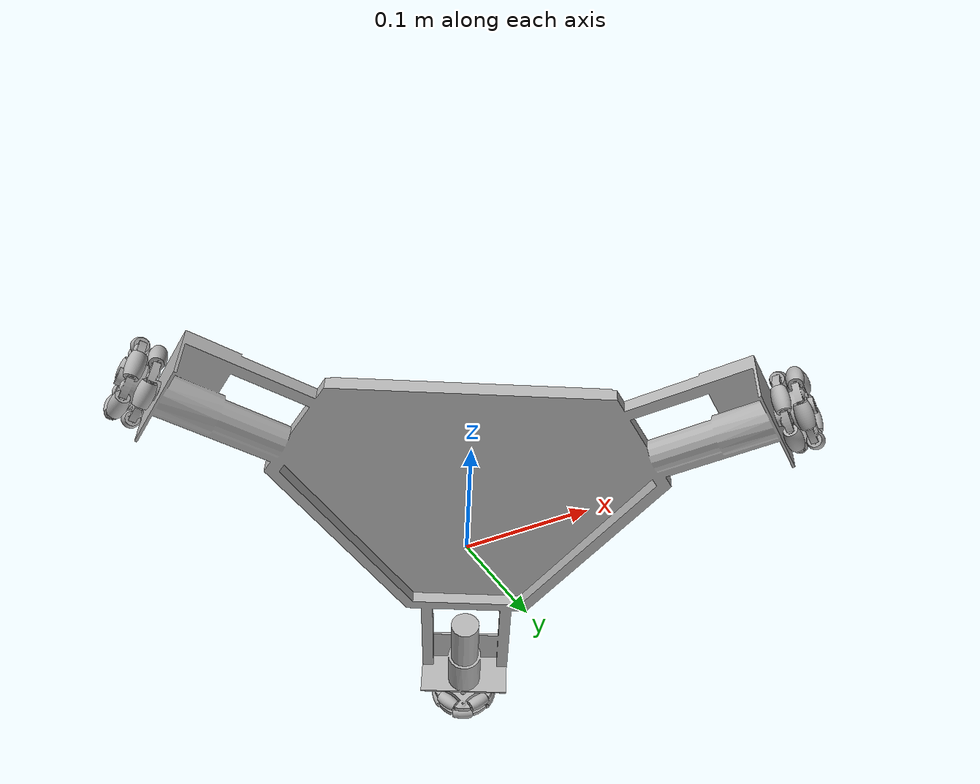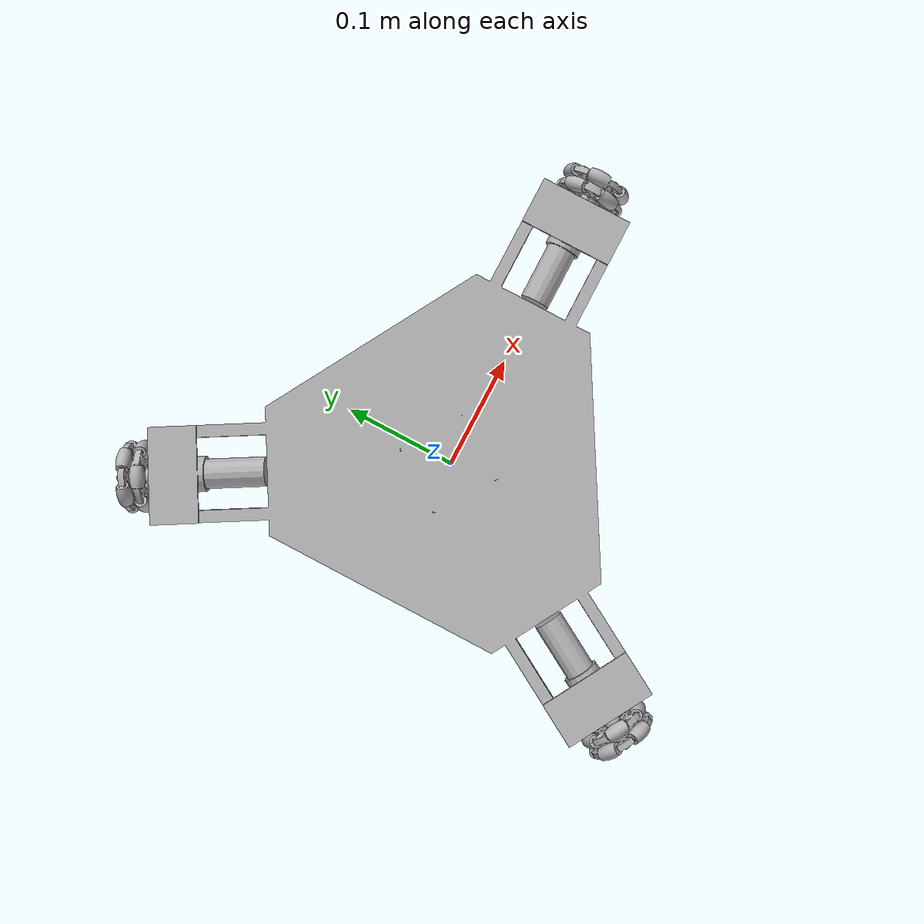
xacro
<?xml version="1.0" ?>
<robot name="Only" xmlns:xacro="http://www.ros.org/wiki/xacro">

<xacro:include filename="$(find Only_description)/urdf/materials.xacro" />
<xacro:include filename="$(find Only_description)/urdf/Only.trans" />
<xacro:include filename="$(find Only_description)/urdf/Only.gazebo" />
<link name="base_link">
  <inertial>
    <origin rpy="0 0 0" xyz="-0.0005481678472587425 0.0004672883105433634 0.04858375980546063"/>
    <mass value="4.617813684697092"/>
    <inertia ixx="0.053549" ixy="1.8e-05" ixz="-2e-06" iyy="0.053613" iyz="-1e-06" izz="0.105761"/>
  </inertial>
  <visual>
    <origin rpy="0 0 0" xyz="0 0 0"/>
    <geometry>
      <mesh filename="package://Only_description/meshes/base_link.stl" scale="0.001 0.001 0.001"/>
    </geometry>
    <material name="silver"/>
  </visual>
  <collision>
    <origin rpy="0 0 0" xyz="0 0 0"/>
    <geometry>
      <mesh filename="package://Only_description/meshes/base_link.stl" scale="0.001 0.001 0.001"/>
    </geometry>
  </collision>
</link>

<link name="RubberWheel__19__1">
  <inertial>
    <origin rpy="0 0 0" xyz="6.72192752987355e-08 4.335093944929369e-07 5.4518222020183416e-09"/>
    <mass value="0.0149327963758917"/>
    <inertia ixx="0.0" ixy="0.0" ixz="0.0" iyy="0.0" iyz="-0.0" izz="0.0"/>
  </inertial>
  <visual>
    <origin rpy="0 0 0" xyz="0.122187 0.238539 -0.050602"/>
    <geometry>
      <mesh filename="package://Only_description/meshes/RubberWheel__19__1.stl" scale="0.001 0.001 0.001"/>
    </geometry>
    <material name="silver"/>
  </visual>
  <collision>
    <origin rpy="0 0 0" xyz="0.122187 0.238539 -0.050602"/>
    <geometry>
      <mesh filename="package://Only_description/meshes/RubberWheel__19__1.stl" scale="0.001 0.001 0.001"/>
    </geometry>
  </collision>
</link>

<link name="RubberWheel__20__1">
  <inertial>
    <origin rpy="0 0 0" xyz="1.0402291833466748e-07 2.990247199852192e-08 5.392345077404048e-09"/>
    <mass value="0.0149327963758917"/>
    <inertia ixx="0.0" ixy="0.0" ixz="-0.0" iyy="0.0" iyz="0.0" izz="0.0"/>
  </inertial>
  <visual>
    <origin rpy="0 0 0" xyz="0.146681 0.224397 -0.050602"/>
    <geometry>
      <mesh filename="package://Only_description/meshes/RubberWheel__20__1.stl" scale="0.001 0.001 0.001"/>
    </geometry>
    <material name="silver"/>
  </visual>
  <collision>
    <origin rpy="0 0 0" xyz="0.146681 0.224397 -0.050602"/>
    <geometry>
      <mesh filename="package://Only_description/meshes/RubberWheel__20__1.stl" scale="0.001 0.001 0.001"/>
    </geometry>
  </collision>
</link>

<link name="RubberWheel__18__1">
  <inertial>
    <origin rpy="0 0 0" xyz="5.316830542501094e-08 2.3458956110999907e-08 9.078439291293483e-08"/>
    <mass value="0.0149327963758917"/>
    <inertia ixx="0.0" ixy="0.0" ixz="0.0" iyy="0.0" iyz="-0.0" izz="0.0"/>
  </inertial>
  <visual>
    <origin rpy="0 0 0" xyz="0.15425 0.220027 -0.023703"/>
    <geometry>
      <mesh filename="package://Only_description/meshes/RubberWheel__18__1.stl" scale="0.001 0.001 0.001"/>
    </geometry>
    <material name="silver"/>
  </visual>
  <collision>
    <origin rpy="0 0 0" xyz="0.15425 0.220027 -0.023703"/>
    <geometry>
      <mesh filename="package://Only_description/meshes/RubberWheel__18__1.stl" scale="0.001 0.001 0.001"/>
    </geometry>
  </collision>
</link>

<link name="RubberWheel__16__1">
  <inertial>
    <origin rpy="0 0 0" xyz="8.567393922076505e-08 2.3161439655083882e-07 -3.526443179838537e-07"/>
    <mass value="0.0149327963758917"/>
    <inertia ixx="0.0" ixy="0.0" ixz="-0.0" iyy="0.0" iyz="0.0" izz="1e-06"/>
  </inertial>
  <visual>
    <origin rpy="0 0 0" xyz="0.134434 0.231468 -0.007079"/>
    <geometry>
      <mesh filename="package://Only_description/meshes/RubberWheel__16__1.stl" scale="0.001 0.001 0.001"/>
    </geometry>
    <material name="silver"/>
  </visual>
  <collision>
    <origin rpy="0 0 0" xyz="0.134434 0.231468 -0.007079"/>
    <geometry>
      <mesh filename="package://Only_description/meshes/RubberWheel__16__1.stl" scale="0.001 0.001 0.001"/>
    </geometry>
  </collision>
</link>

<link name="RubberWheel__17__1">
  <inertial>
    <origin rpy="0 0 0" xyz="1.18139199145606e-07 4.3983977202066704e-07 9.088062883147452e-08"/>
    <mass value="0.0149327963758917"/>
    <inertia ixx="0.0" ixy="0.0" ixz="-0.0" iyy="0.0" iyz="0.0" izz="0.0"/>
  </inertial>
  <visual>
    <origin rpy="0 0 0" xyz="0.114618 0.242909 -0.023703"/>
    <geometry>
      <mesh filename="package://Only_description/meshes/RubberWheel__17__1.stl" scale="0.001 0.001 0.001"/>
    </geometry>
    <material name="silver"/>
  </visual>
  <collision>
    <origin rpy="0 0 0" xyz="0.114618 0.242909 -0.023703"/>
    <geometry>
      <mesh filename="package://Only_description/meshes/RubberWheel__17__1.stl" scale="0.001 0.001 0.001"/>
    </geometry>
  </collision>
</link>

<link name="RubberWheel__13__1">
  <inertial>
    <origin rpy="0 0 0" xyz="8.566264469989093e-08 -4.63466217875963e-07 -1.1142432294886095e-07"/>
    <mass value="0.0149327963758917"/>
    <inertia ixx="0.0" ixy="0.0" ixz="-0.0" iyy="0.0" iyz="0.0" izz="1e-06"/>
  </inertial>
  <visual>
    <origin rpy="0 0 0" xyz="0.128434 0.221075 -0.055197"/>
    <geometry>
      <mesh filename="package://Only_description/meshes/RubberWheel__13__1.stl" scale="0.001 0.001 0.001"/>
    </geometry>
    <material name="silver"/>
  </visual>
  <collision>
    <origin rpy="0 0 0" xyz="0.128434 0.221075 -0.055197"/>
    <geometry>
      <mesh filename="package://Only_description/meshes/RubberWheel__13__1.stl" scale="0.001 0.001 0.001"/>
    </geometry>
  </collision>
</link>

<link name="RubberWheel__14__1">
  <inertial>
    <origin rpy="0 0 0" xyz="5.319749671328644e-08 3.283083451488533e-07 4.4505105208092477e-07"/>
    <mass value="0.0149327963758917"/>
    <inertia ixx="0.0" ixy="0.0" ixz="-0.0" iyy="0.0" iyz="0.0" izz="0.0"/>
  </inertial>
  <visual>
    <origin rpy="0 0 0" xyz="0.14825 0.209635 -0.038572"/>
    <geometry>
      <mesh filename="package://Only_description/meshes/RubberWheel__14__1.stl" scale="0.001 0.001 0.001"/>
    </geometry>
    <material name="silver"/>
  </visual>
  <collision>
    <origin rpy="0 0 0" xyz="0.14825 0.209635 -0.038572"/>
    <geometry>
      <mesh filename="package://Only_description/meshes/RubberWheel__14__1.stl" scale="0.001 0.001 0.001"/>
    </geometry>
  </collision>
</link>

<link name="RubberWheel__15__1">
  <inertial>
    <origin rpy="0 0 0" xyz="1.0411717221714412e-07 3.346388662561761e-07 -4.695203371270218e-07"/>
    <mass value="0.0149327963758917"/>
    <inertia ixx="0.0" ixy="0.0" ixz="0.0" iyy="0.0" iyz="-0.0" izz="0.0"/>
  </inertial>
  <visual>
    <origin rpy="0 0 0" xyz="0.140681 0.214005 -0.011674"/>
    <geometry>
      <mesh filename="package://Only_description/meshes/RubberWheel__15__1.stl" scale="0.001 0.001 0.001"/>
    </geometry>
    <material name="silver"/>
  </visual>
  <collision>
    <origin rpy="0 0 0" xyz="0.140681 0.214005 -0.011674"/>
    <geometry>
      <mesh filename="package://Only_description/meshes/RubberWheel__15__1.stl" scale="0.001 0.001 0.001"/>
    </geometry>
  </collision>
</link>

<link name="RubberWheel__11__1">
  <inertial>
    <origin rpy="0 0 0" xyz="6.731346743893418e-08 -2.617541769722731e-07 -4.694611078857186e-07"/>
    <mass value="0.0149327963758917"/>
    <inertia ixx="0.0" ixy="0.0" ixz="-0.0" iyy="0.0" iyz="0.0" izz="0.0"/>
  </inertial>
  <visual>
    <origin rpy="0 0 0" xyz="0.116187 0.228146 -0.011674"/>
    <geometry>
      <mesh filename="package://Only_description/meshes/RubberWheel__11__1.stl" scale="0.001 0.001 0.001"/>
    </geometry>
    <material name="silver"/>
  </visual>
  <collision>
    <origin rpy="0 0 0" xyz="0.116187 0.228146 -0.011674"/>
    <geometry>
      <mesh filename="package://Only_description/meshes/RubberWheel__11__1.stl" scale="0.001 0.001 0.001"/>
    </geometry>
  </collision>
</link>

<link name="RubberWheel__12__1">
  <inertial>
    <origin rpy="0 0 0" xyz="1.1816833075939392e-07 -2.553108047198549e-07 4.451466442401131e-07"/>
    <mass value="0.0149327963758917"/>
    <inertia ixx="0.0" ixy="0.0" ixz="0.0" iyy="0.0" iyz="-0.0" izz="0.0"/>
  </inertial>
  <visual>
    <origin rpy="0 0 0" xyz="0.108618 0.232516 -0.038572"/>
    <geometry>
      <mesh filename="package://Only_description/meshes/RubberWheel__12__1.stl" scale="0.001 0.001 0.001"/>
    </geometry>
    <material name="silver"/>
  </visual>
  <collision>
    <origin rpy="0 0 0" xyz="0.108618 0.232516 -0.038572"/>
    <geometry>
      <mesh filename="package://Only_description/meshes/RubberWheel__12__1.stl" scale="0.001 0.001 0.001"/>
    </geometry>
  </collision>
</link>

<link name="RubberWheel__22__1">
  <inertial>
    <origin rpy="0 0 0" xyz="4.281013699647396e-07 -2.2297172462548698e-07 4.465371166925691e-07"/>
    <mass value="0.0149327963758917"/>
    <inertia ixx="1e-06" ixy="0.0" ixz="0.0" iyy="0.0" iyz="-0.0" izz="0.0"/>
  </inertial>
  <visual>
    <origin rpy="0 0 0" xyz="-0.267222 0.022395 -0.038572"/>
    <geometry>
      <mesh filename="package://Only_description/meshes/RubberWheel__22__1.stl" scale="0.001 0.001 0.001"/>
    </geometry>
    <material name="silver"/>
  </visual>
  <collision>
    <origin rpy="0 0 0" xyz="-0.267222 0.022395 -0.038572"/>
    <geometry>
      <mesh filename="package://Only_description/meshes/RubberWheel__22__1.stl" scale="0.001 0.001 0.001"/>
    </geometry>
  </collision>
</link>

<link name="RubberWheel__21__1">
  <inertial>
    <origin rpy="0 0 0" xyz="4.2797832838781247e-07 3.6058249097995973e-07 -1.101440781012264e-07"/>
    <mass value="0.0149327963758917"/>
    <inertia ixx="1e-06" ixy="0.0" ixz="-0.0" iyy="0.0" iyz="0.0" izz="1e-06"/>
  </inertial>
  <visual>
    <origin rpy="0 0 0" xyz="-0.267222 -0.000486 -0.055197"/>
    <geometry>
      <mesh filename="package://Only_description/meshes/RubberWheel__21__1.stl" scale="0.001 0.001 0.001"/>
    </geometry>
    <material name="silver"/>
  </visual>
  <collision>
    <origin rpy="0 0 0" xyz="-0.267222 -0.000486 -0.055197"/>
    <geometry>
      <mesh filename="package://Only_description/meshes/RubberWheel__21__1.stl" scale="0.001 0.001 0.001"/>
    </geometry>
  </collision>
</link>

<link name="RubberWheel__26__1">
  <inertial>
    <origin rpy="0 0 0" xyz="4.2798784988251626e-07 -5.609290593469596e-08 4.46221066763286e-07"/>
    <mass value="0.0149327963758917"/>
    <inertia ixx="1e-06" ixy="-0.0" ixz="0.0" iyy="0.0" iyz="0.0" izz="0.0"/>
  </inertial>
  <visual>
    <origin rpy="0 0 0" xyz="-0.267222 -0.023368 -0.038572"/>
    <geometry>
      <mesh filename="package://Only_description/meshes/RubberWheel__26__1.stl" scale="0.001 0.001 0.001"/>
    </geometry>
    <material name="silver"/>
  </visual>
  <collision>
    <origin rpy="0 0 0" xyz="-0.267222 -0.023368 -0.038572"/>
    <geometry>
      <mesh filename="package://Only_description/meshes/RubberWheel__26__1.stl" scale="0.001 0.001 0.001"/>
    </geometry>
  </collision>
</link>

<link name="RubberWheel__24__1">
  <inertial>
    <origin rpy="0 0 0" xyz="4.281167795827656e-07 -4.343611260601565e-08 -4.6830814213853766e-07"/>
    <mass value="0.0149327963758917"/>
    <inertia ixx="1e-06" ixy="0.0" ixz="0.0" iyy="0.0" iyz="-0.0" izz="0.0"/>
  </inertial>
  <visual>
    <origin rpy="0 0 0" xyz="-0.267222 -0.014628 -0.011674"/>
    <geometry>
      <mesh filename="package://Only_description/meshes/RubberWheel__24__1.stl" scale="0.001 0.001 0.001"/>
    </geometry>
    <material name="silver"/>
  </visual>
  <collision>
    <origin rpy="0 0 0" xyz="-0.267222 -0.014628 -0.011674"/>
    <geometry>
      <mesh filename="package://Only_description/meshes/RubberWheel__24__1.stl" scale="0.001 0.001 0.001"/>
    </geometry>
  </collision>
</link>

<link name="RubberWheel__23__1">
  <inertial>
    <origin rpy="0 0 0" xyz="4.281869388500503e-07 -2.3600005509723243e-07 -4.681128127504569e-07"/>
    <mass value="0.0149327963758917"/>
    <inertia ixx="1e-06" ixy="-0.0" ixz="0.0" iyy="0.0" iyz="0.0" izz="0.0"/>
  </inertial>
  <visual>
    <origin rpy="0 0 0" xyz="-0.267222 0.013655 -0.011674"/>
    <geometry>
      <mesh filename="package://Only_description/meshes/RubberWheel__23__1.stl" scale="0.001 0.001 0.001"/>
    </geometry>
    <material name="silver"/>
  </visual>
  <collision>
    <origin rpy="0 0 0" xyz="-0.267222 0.013655 -0.011674"/>
    <geometry>
      <mesh filename="package://Only_description/meshes/RubberWheel__23__1.stl" scale="0.001 0.001 0.001"/>
    </geometry>
  </collision>
</link>

<link name="RubberWheel__29__1">
  <inertial>
    <origin rpy="0 0 0" xyz="4.279615868352238e-07 -4.319686793680111e-08 6.542121906705223e-09"/>
    <mass value="0.0149327963758917"/>
    <inertia ixx="1e-06" ixy="-0.0" ixz="0.0" iyy="0.0" iyz="0.0" izz="0.0"/>
  </inertial>
  <visual>
    <origin rpy="0 0 0" xyz="-0.255222 -0.014628 -0.050602"/>
    <geometry>
      <mesh filename="package://Only_description/meshes/RubberWheel__29__1.stl" scale="0.001 0.001 0.001"/>
    </geometry>
    <material name="silver"/>
  </visual>
  <collision>
    <origin rpy="0 0 0" xyz="-0.255222 -0.014628 -0.050602"/>
    <geometry>
      <mesh filename="package://Only_description/meshes/RubberWheel__29__1.stl" scale="0.001 0.001 0.001"/>
    </geometry>
  </collision>
</link>

<link name="RubberWheel__27__1">
  <inertial>
    <origin rpy="0 0 0" xyz="4.2803174366001784e-07 -2.357607423661423e-07 6.737698461656283e-09"/>
    <mass value="0.0149327963758917"/>
    <inertia ixx="1e-06" ixy="0.0" ixz="0.0" iyy="0.0" iyz="-0.0" izz="0.0"/>
  </inertial>
  <visual>
    <origin rpy="0 0 0" xyz="-0.255222 0.013655 -0.050602"/>
    <geometry>
      <mesh filename="package://Only_description/meshes/RubberWheel__27__1.stl" scale="0.001 0.001 0.001"/>
    </geometry>
    <material name="silver"/>
  </visual>
  <collision>
    <origin rpy="0 0 0" xyz="-0.255222 0.013655 -0.050602"/>
    <geometry>
      <mesh filename="package://Only_description/meshes/RubberWheel__27__1.stl" scale="0.001 0.001 0.001"/>
    </geometry>
  </collision>
</link>

<link name="RubberWheel__30__1">
  <inertial>
    <origin rpy="0 0 0" xyz="4.281606724165776e-07 -2.2310423913873834e-07 9.220868557591189e-08"/>
    <mass value="0.0149327963758917"/>
    <inertia ixx="1e-06" ixy="-0.0" ixz="0.0" iyy="0.0" iyz="0.0" izz="0.0"/>
  </inertial>
  <visual>
    <origin rpy="0 0 0" xyz="-0.255222 0.022395 -0.023703"/>
    <geometry>
      <mesh filename="package://Only_description/meshes/RubberWheel__30__1.stl" scale="0.001 0.001 0.001"/>
    </geometry>
    <material name="silver"/>
  </visual>
  <collision>
    <origin rpy="0 0 0" xyz="-0.255222 0.022395 -0.023703"/>
    <geometry>
      <mesh filename="package://Only_description/meshes/RubberWheel__30__1.stl" scale="0.001 0.001 0.001"/>
    </geometry>
  </collision>
</link>

<link name="RubberWheel__28__1">
  <inertial>
    <origin rpy="0 0 0" xyz="4.281701982411512e-07 3.602204256494433e-07 -3.514264894912897e-07"/>
    <mass value="0.0149327963758917"/>
    <inertia ixx="1e-06" ixy="0.0" ixz="-0.0" iyy="0.0" iyz="0.0" izz="1e-06"/>
  </inertial>
  <visual>
    <origin rpy="0 0 0" xyz="-0.255222 -0.000486 -0.007079"/>
    <geometry>
      <mesh filename="package://Only_description/meshes/RubberWheel__28__1.stl" scale="0.001 0.001 0.001"/>
    </geometry>
    <material name="silver"/>
  </visual>
  <collision>
    <origin rpy="0 0 0" xyz="-0.255222 -0.000486 -0.007079"/>
    <geometry>
      <mesh filename="package://Only_description/meshes/RubberWheel__28__1.stl" scale="0.001 0.001 0.001"/>
    </geometry>
  </collision>
</link>

<link name="RubberWheel__25__1">
  <inertial>
    <origin rpy="0 0 0" xyz="4.2804715605360144e-07 -5.622548624600876e-08 9.189199332709785e-08"/>
    <mass value="0.0149327963758917"/>
    <inertia ixx="1e-06" ixy="0.0" ixz="0.0" iyy="0.0" iyz="-0.0" izz="0.0"/>
  </inertial>
  <visual>
    <origin rpy="0 0 0" xyz="-0.255222 -0.023368 -0.023703"/>
    <geometry>
      <mesh filename="package://Only_description/meshes/RubberWheel__25__1.stl" scale="0.001 0.001 0.001"/>
    </geometry>
    <material name="silver"/>
  </visual>
  <collision>
    <origin rpy="0 0 0" xyz="-0.255222 -0.023368 -0.023703"/>
    <geometry>
      <mesh filename="package://Only_description/meshes/RubberWheel__25__1.stl" scale="0.001 0.001 0.001"/>
    </geometry>
  </collision>
</link>

<link name="RubberWheel__8__1">
  <inertial>
    <origin rpy="0 0 0" xyz="3.4820911906652263e-07 -8.373710350118024e-08 4.459941034540282e-09"/>
    <mass value="0.0149327963758917"/>
    <inertia ixx="0.0" ixy="-0.0" ixz="-0.0" iyy="0.0" iyz="-0.0" izz="0.0"/>
  </inertial>
  <visual>
    <origin rpy="0 0 0" xyz="0.146926 -0.225113 -0.050602"/>
    <geometry>
      <mesh filename="package://Only_description/meshes/RubberWheel__8__1.stl" scale="0.001 0.001 0.001"/>
    </geometry>
    <material name="silver"/>
  </visual>
  <collision>
    <origin rpy="0 0 0" xyz="0.146926 -0.225113 -0.050602"/>
    <geometry>
      <mesh filename="package://Only_description/meshes/RubberWheel__8__1.stl" scale="0.001 0.001 0.001"/>
    </geometry>
  </collision>
</link>

<link name="RubberWheel__6__1">
  <inertial>
    <origin rpy="0 0 0" xyz="2.9732849624042323e-07 -7.736165283378504e-08 8.987036776569868e-08"/>
    <mass value="0.0149327963758917"/>
    <inertia ixx="0.0" ixy="-0.0" ixz="0.0" iyy="0.0" iyz="0.0" izz="0.0"/>
  </inertial>
  <visual>
    <origin rpy="0 0 0" xyz="0.154495 -0.220743 -0.023703"/>
    <geometry>
      <mesh filename="package://Only_description/meshes/RubberWheel__6__1.stl" scale="0.001 0.001 0.001"/>
    </geometry>
    <material name="silver"/>
  </visual>
  <collision>
    <origin rpy="0 0 0" xyz="0.154495 -0.220743 -0.023703"/>
    <geometry>
      <mesh filename="package://Only_description/meshes/RubberWheel__6__1.stl" scale="0.001 0.001 0.001"/>
    </geometry>
  </collision>
</link>

<link name="RubberWheel__7__1">
  <inertial>
    <origin rpy="0 0 0" xyz="3.2993193790908926e-07 -2.857564357916509e-07 -3.5360645637191185e-07"/>
    <mass value="0.0149327963758917"/>
    <inertia ixx="0.0" ixy="-0.0" ixz="0.0" iyy="0.0" iyz="-0.0" izz="1e-06"/>
  </inertial>
  <visual>
    <origin rpy="0 0 0" xyz="0.134679 -0.232184 -0.007079"/>
    <geometry>
      <mesh filename="package://Only_description/meshes/RubberWheel__7__1.stl" scale="0.001 0.001 0.001"/>
    </geometry>
    <material name="silver"/>
  </visual>
  <collision>
    <origin rpy="0 0 0" xyz="0.134679 -0.232184 -0.007079"/>
    <geometry>
      <mesh filename="package://Only_description/meshes/RubberWheel__7__1.stl" scale="0.001 0.001 0.001"/>
    </geometry>
  </collision>
</link>

<link name="RubberWheel__10__1">
  <inertial>
    <origin rpy="0 0 0" xyz="3.6248367517310864e-07 -4.940616574466983e-07 8.987037990182412e-08"/>
    <mass value="0.0149327963758917"/>
    <inertia ixx="0.0" ixy="-0.0" ixz="-0.0" iyy="0.0" iyz="-0.0" izz="0.0"/>
  </inertial>
  <visual>
    <origin rpy="0 0 0" xyz="0.114863 -0.243625 -0.023703"/>
    <geometry>
      <mesh filename="package://Only_description/meshes/RubberWheel__10__1.stl" scale="0.001 0.001 0.001"/>
    </geometry>
    <material name="silver"/>
  </visual>
  <collision>
    <origin rpy="0 0 0" xyz="0.114863 -0.243625 -0.023703"/>
    <geometry>
      <mesh filename="package://Only_description/meshes/RubberWheel__10__1.stl" scale="0.001 0.001 0.001"/>
    </geometry>
  </collision>
</link>

<link name="RubberWheel__9__1">
  <inertial>
    <origin rpy="0 0 0" xyz="3.1151936946693937e-07 -4.875412946969693e-07 4.459947848534096e-09"/>
    <mass value="0.0149327963758917"/>
    <inertia ixx="0.0" ixy="-0.0" ixz="0.0" iyy="0.0" iyz="0.0" izz="0.0"/>
  </inertial>
  <visual>
    <origin rpy="0 0 0" xyz="0.122432 -0.239255 -0.050602"/>
    <geometry>
      <mesh filename="package://Only_description/meshes/RubberWheel__9__1.stl" scale="0.001 0.001 0.001"/>
    </geometry>
    <material name="silver"/>
  </visual>
  <collision>
    <origin rpy="0 0 0" xyz="0.122432 -0.239255 -0.050602"/>
    <geometry>
      <mesh filename="package://Only_description/meshes/RubberWheel__9__1.stl" scale="0.001 0.001 0.001"/>
    </geometry>
  </collision>
</link>

<link name="RubberWheel__3__1">
  <inertial>
    <origin rpy="0 0 0" xyz="3.2982053738139783e-07 4.095066757359156e-07 -1.1233456338743952e-07"/>
    <mass value="0.0149327963758917"/>
    <inertia ixx="0.0" ixy="-0.0" ixz="0.0" iyy="0.0" iyz="-0.0" izz="1e-06"/>
  </inertial>
  <visual>
    <origin rpy="0 0 0" xyz="0.128679 -0.221791 -0.055197"/>
    <geometry>
      <mesh filename="package://Only_description/meshes/RubberWheel__3__1.stl" scale="0.001 0.001 0.001"/>
    </geometry>
    <material name="silver"/>
  </visual>
  <collision>
    <origin rpy="0 0 0" xyz="0.128679 -0.221791 -0.055197"/>
    <geometry>
      <mesh filename="package://Only_description/meshes/RubberWheel__3__1.stl" scale="0.001 0.001 0.001"/>
    </geometry>
  </collision>
</link>

<link name="RubberWheel__2__1">
  <inertial>
    <origin rpy="0 0 0" xyz="3.624238684579728e-07 2.0111182469362276e-07 4.441889351544659e-07"/>
    <mass value="0.0149327963758917"/>
    <inertia ixx="0.0" ixy="-0.0" ixz="0.0" iyy="0.0" iyz="0.0" izz="0.0"/>
  </inertial>
  <visual>
    <origin rpy="0 0 0" xyz="0.108863 -0.233232 -0.038572"/>
    <geometry>
      <mesh filename="package://Only_description/meshes/RubberWheel__2__1.stl" scale="0.001 0.001 0.001"/>
    </geometry>
    <material name="silver"/>
  </visual>
  <collision>
    <origin rpy="0 0 0" xyz="0.108863 -0.233232 -0.038572"/>
    <geometry>
      <mesh filename="package://Only_description/meshes/RubberWheel__2__1.stl" scale="0.001 0.001 0.001"/>
    </geometry>
  </collision>
</link>

<link name="RubberWheel__4__1">
  <inertial>
    <origin rpy="0 0 0" xyz="3.1154349454387553e-07 2.0748741869081044e-07 -4.704008353239447e-07"/>
    <mass value="0.0149327963758917"/>
    <inertia ixx="0.0" ixy="-0.0" ixz="-0.0" iyy="0.0" iyz="-0.0" izz="0.0"/>
  </inertial>
  <visual>
    <origin rpy="0 0 0" xyz="0.116432 -0.228862 -0.011674"/>
    <geometry>
      <mesh filename="package://Only_description/meshes/RubberWheel__4__1.stl" scale="0.001 0.001 0.001"/>
    </geometry>
    <material name="silver"/>
  </visual>
  <collision>
    <origin rpy="0 0 0" xyz="0.116432 -0.228862 -0.011674"/>
    <geometry>
      <mesh filename="package://Only_description/meshes/RubberWheel__4__1.stl" scale="0.001 0.001 0.001"/>
    </geometry>
  </collision>
</link>

<link name="RubberWheel__5__1">
  <inertial>
    <origin rpy="0 0 0" xyz="3.4823330657962615e-07 -3.887083538378633e-07 -4.704010895476701e-07"/>
    <mass value="0.0149327963758917"/>
    <inertia ixx="0.0" ixy="-0.0" ixz="0.0" iyy="0.0" iyz="0.0" izz="0.0"/>
  </inertial>
  <visual>
    <origin rpy="0 0 0" xyz="0.140926 -0.214721 -0.011674"/>
    <geometry>
      <mesh filename="package://Only_description/meshes/RubberWheel__5__1.stl" scale="0.001 0.001 0.001"/>
    </geometry>
    <material name="silver"/>
  </visual>
  <collision>
    <origin rpy="0 0 0" xyz="0.140926 -0.214721 -0.011674"/>
    <geometry>
      <mesh filename="package://Only_description/meshes/RubberWheel__5__1.stl" scale="0.001 0.001 0.001"/>
    </geometry>
  </collision>
</link>

<link name="RubberWheel__1__1">
  <inertial>
    <origin rpy="0 0 0" xyz="2.972687514479766e-07 -3.821881348065048e-07 4.4418828081677075e-07"/>
    <mass value="0.0149327963758917"/>
    <inertia ixx="0.0" ixy="-0.0" ixz="-0.0" iyy="0.0" iyz="-0.0" izz="0.0"/>
  </inertial>
  <visual>
    <origin rpy="0 0 0" xyz="0.148495 -0.210351 -0.038572"/>
    <geometry>
      <mesh filename="package://Only_description/meshes/RubberWheel__1__1.stl" scale="0.001 0.001 0.001"/>
    </geometry>
    <material name="silver"/>
  </visual>
  <collision>
    <origin rpy="0 0 0" xyz="0.148495 -0.210351 -0.038572"/>
    <geometry>
      <mesh filename="package://Only_description/meshes/RubberWheel__1__1.stl" scale="0.001 0.001 0.001"/>
    </geometry>
  </collision>
</link>

<link name="WheelBase__3__1">
  <inertial>
    <origin rpy="0 0 0" xyz="0.00256897250893548 0.004456385205079627 3.309601156398917e-06"/>
    <mass value="0.14657737338783688"/>
    <inertia ixx="2.9e-05" ixy="6e-06" ixz="-0.0" iyy="3.7e-05" iyz="-0.0" izz="2.6e-05"/>
  </inertial>
  <visual>
    <origin rpy="0 0 0" xyz="0.133884 0.230515 -0.031138"/>
    <geometry>
      <mesh filename="package://Only_description/meshes/WheelBase__3__1.stl" scale="0.001 0.001 0.001"/>
    </geometry>
    <material name="silver"/>
  </visual>
  <collision>
    <origin rpy="0 0 0" xyz="0.133884 0.230515 -0.031138"/>
    <geometry>
      <mesh filename="package://Only_description/meshes/WheelBase__3__1.stl" scale="0.001 0.001 0.001"/>
    </geometry>
  </collision>
</link>

<link name="WheelBase__5__1">
  <inertial>
    <origin rpy="0 0 0" xyz="-0.009043479736456861 3.901943215357004e-06 -3.7724220747561987e-06"/>
    <mass value="0.14657737338734944"/>
    <inertia ixx="4e-05" ixy="0.0" ixz="-0.0" iyy="2.6e-05" iyz="0.0" izz="2.6e-05"/>
  </inertial>
  <visual>
    <origin rpy="0 0 0" xyz="-0.270022 -0.000486 -0.031138"/>
    <geometry>
      <mesh filename="package://Only_description/meshes/WheelBase__5__1.stl" scale="0.001 0.001 0.001"/>
    </geometry>
    <material name="silver"/>
  </visual>
  <collision>
    <origin rpy="0 0 0" xyz="-0.270022 -0.000486 -0.031138"/>
    <geometry>
      <mesh filename="package://Only_description/meshes/WheelBase__5__1.stl" scale="0.001 0.001 0.001"/>
    </geometry>
  </collision>
</link>

<link name="WheelBase__1__1">
  <inertial>
    <origin rpy="0 0 0" xyz="0.00452535084651165 -0.00783089771441381 3.3086660311335003e-06"/>
    <mass value="0.14657737338765658"/>
    <inertia ixx="2.9e-05" ixy="-6e-06" ixz="-0.0" iyy="3.7e-05" iyz="0.0" izz="2.6e-05"/>
  </inertial>
  <visual>
    <origin rpy="0 0 0" xyz="0.136079 -0.234609 -0.031138"/>
    <geometry>
      <mesh filename="package://Only_description/meshes/WheelBase__1__1.stl" scale="0.001 0.001 0.001"/>
    </geometry>
    <material name="silver"/>
  </visual>
  <collision>
    <origin rpy="0 0 0" xyz="0.136079 -0.234609 -0.031138"/>
    <geometry>
      <mesh filename="package://Only_description/meshes/WheelBase__1__1.stl" scale="0.001 0.001 0.001"/>
    </geometry>
  </collision>
</link>

<joint name="Rev4" type="continuous">
  <origin rpy="0 0 0" xyz="0.011697 -0.008024 0.019464"/>
  <parent link="WheelBase__3__1"/>
  <child link="RubberWheel__19__1"/>
  <axis xyz="0.700629 -0.404509 -0.587785"/>
</joint>

<joint name="Rev5" type="continuous">
  <origin rpy="0 0 0" xyz="-0.012797 0.006118 0.019464"/>
  <parent link="WheelBase__3__1"/>
  <child link="RubberWheel__20__1"/>
  <axis xyz="0.700629 -0.404508 0.587785"/>
</joint>

<joint name="Rev6" type="continuous">
  <origin rpy="0 0 0" xyz="-0.020366 0.010488 -0.007435"/>
  <parent link="WheelBase__3__1"/>
  <child link="RubberWheel__18__1"/>
  <axis xyz="-0.267617 0.154509 0.951057"/>
</joint>

<joint name="Rev7" type="continuous">
  <origin rpy="0 0 0" xyz="-0.00055 -0.000953 -0.024059"/>
  <parent link="WheelBase__3__1"/>
  <child link="RubberWheel__16__1"/>
  <axis xyz="-0.866025 0.5 -0.0"/>
</joint>

<joint name="Rev8" type="continuous">
  <origin rpy="0 0 0" xyz="0.019266 -0.012394 -0.007435"/>
  <parent link="WheelBase__3__1"/>
  <child link="RubberWheel__17__1"/>
  <axis xyz="-0.267617 0.154508 -0.951057"/>
</joint>

<joint name="Rev9" type="continuous">
  <origin rpy="0 0 0" xyz="0.00545 0.00944 0.024059"/>
  <parent link="WheelBase__3__1"/>
  <child link="RubberWheel__13__1"/>
  <axis xyz="0.866025 -0.5 0.0"/>
</joint>

<joint name="Rev10" type="continuous">
  <origin rpy="0 0 0" xyz="-0.014366 0.02088 0.007434"/>
  <parent link="WheelBase__3__1"/>
  <child link="RubberWheel__14__1"/>
  <axis xyz="0.267617 -0.154508 0.951057"/>
</joint>

<joint name="Rev11" type="continuous">
  <origin rpy="0 0 0" xyz="-0.006797 0.01651 -0.019464"/>
  <parent link="WheelBase__3__1"/>
  <child link="RubberWheel__15__1"/>
  <axis xyz="-0.700629 0.404509 0.587785"/>
</joint>

<joint name="Rev12" type="continuous">
  <origin rpy="0 0 0" xyz="0.017697 0.002369 -0.019464"/>
  <parent link="WheelBase__3__1"/>
  <child link="RubberWheel__11__1"/>
  <axis xyz="-0.700629 0.404508 -0.587785"/>
</joint>

<joint name="Rev13" type="continuous">
  <origin rpy="0 0 0" xyz="0.025266 -0.002001 0.007434"/>
  <parent link="WheelBase__3__1"/>
  <child link="RubberWheel__12__1"/>
  <axis xyz="0.267617 -0.154509 -0.951057"/>
</joint>

<joint name="Rev14" type="continuous">
  <origin rpy="0 0 0" xyz="-0.0028 -0.022881 0.007434"/>
  <parent link="WheelBase__5__1"/>
  <child link="RubberWheel__22__1"/>
  <axis xyz="-0.0 0.309017 0.951057"/>
</joint>

<joint name="Rev15" type="continuous">
  <origin rpy="0 0 0" xyz="-0.0028 0.0 0.024059"/>
  <parent link="WheelBase__5__1"/>
  <child link="RubberWheel__21__1"/>
  <axis xyz="-0.0 1.0 -0.0"/>
</joint>

<joint name="Rev16" type="continuous">
  <origin rpy="0 0 0" xyz="-0.0028 0.022882 0.007434"/>
  <parent link="WheelBase__5__1"/>
  <child link="RubberWheel__26__1"/>
  <axis xyz="0.0 0.309017 -0.951057"/>
</joint>

<joint name="Rev17" type="continuous">
  <origin rpy="0 0 0" xyz="-0.0028 0.014142 -0.019464"/>
  <parent link="WheelBase__5__1"/>
  <child link="RubberWheel__24__1"/>
  <axis xyz="0.0 -0.809017 -0.587785"/>
</joint>

<joint name="Rev18" type="continuous">
  <origin rpy="0 0 0" xyz="-0.0028 -0.014141 -0.019464"/>
  <parent link="WheelBase__5__1"/>
  <child link="RubberWheel__23__1"/>
  <axis xyz="-0.0 -0.809017 0.587785"/>
</joint>

<joint name="Rev19" type="continuous">
  <origin rpy="0 0 0" xyz="-0.0148 0.014142 0.019464"/>
  <parent link="WheelBase__5__1"/>
  <child link="RubberWheel__29__1"/>
  <axis xyz="0.0 0.809017 -0.587785"/>
</joint>

<joint name="Rev20" type="continuous">
  <origin rpy="0 0 0" xyz="-0.0148 -0.014141 0.019464"/>
  <parent link="WheelBase__5__1"/>
  <child link="RubberWheel__27__1"/>
  <axis xyz="-0.0 0.809017 0.587785"/>
</joint>

<joint name="Rev21" type="continuous">
  <origin rpy="0 0 0" xyz="-0.0148 -0.022881 -0.007435"/>
  <parent link="WheelBase__5__1"/>
  <child link="RubberWheel__30__1"/>
  <axis xyz="-0.0 -0.309017 0.951057"/>
</joint>

<joint name="Rev22" type="continuous">
  <origin rpy="0 0 0" xyz="-0.0148 0.0 -0.024059"/>
  <parent link="WheelBase__5__1"/>
  <child link="RubberWheel__28__1"/>
  <axis xyz="0.0 -1.0 0.0"/>
</joint>

<joint name="Rev23" type="continuous">
  <origin rpy="0 0 0" xyz="-0.0148 0.022882 -0.007435"/>
  <parent link="WheelBase__5__1"/>
  <child link="RubberWheel__25__1"/>
  <axis xyz="0.0 -0.309017 -0.951057"/>
</joint>

<joint name="Rev24" type="continuous">
  <origin rpy="0 0 0" xyz="-0.010847 -0.009496 0.019464"/>
  <parent link="WheelBase__1__1"/>
  <child link="RubberWheel__8__1"/>
  <axis xyz="-0.700629 -0.404508 -0.587785"/>
</joint>

<joint name="Rev25" type="continuous">
  <origin rpy="0 0 0" xyz="-0.018416 -0.013866 -0.007435"/>
  <parent link="WheelBase__1__1"/>
  <child link="RubberWheel__6__1"/>
  <axis xyz="0.267617 0.154508 -0.951057"/>
</joint>

<joint name="Rev26" type="continuous">
  <origin rpy="0 0 0" xyz="0.0014 -0.002425 -0.024059"/>
  <parent link="WheelBase__1__1"/>
  <child link="RubberWheel__7__1"/>
  <axis xyz="0.866025 0.5 0.0"/>
</joint>

<joint name="Rev27" type="continuous">
  <origin rpy="0 0 0" xyz="0.021216 0.009016 -0.007435"/>
  <parent link="WheelBase__1__1"/>
  <child link="RubberWheel__10__1"/>
  <axis xyz="0.267617 0.154508 0.951057"/>
</joint>

<joint name="Rev28" type="continuous">
  <origin rpy="0 0 0" xyz="0.013647 0.004646 0.019464"/>
  <parent link="WheelBase__1__1"/>
  <child link="RubberWheel__9__1"/>
  <axis xyz="-0.700629 -0.404508 0.587785"/>
</joint>

<joint name="Rev29" type="continuous">
  <origin rpy="0 0 0" xyz="0.0074 -0.012818 0.024059"/>
  <parent link="WheelBase__1__1"/>
  <child link="RubberWheel__3__1"/>
  <axis xyz="-0.866025 -0.5 0.0"/>
</joint>

<joint name="Rev30" type="continuous">
  <origin rpy="0 0 0" xyz="0.027216 -0.001377 0.007434"/>
  <parent link="WheelBase__1__1"/>
  <child link="RubberWheel__2__1"/>
  <axis xyz="-0.267617 -0.154508 0.951057"/>
</joint>

<joint name="Rev31" type="continuous">
  <origin rpy="0 0 0" xyz="0.019647 -0.005747 -0.019464"/>
  <parent link="WheelBase__1__1"/>
  <child link="RubberWheel__4__1"/>
  <axis xyz="0.700629 0.404508 0.587785"/>
</joint>

<joint name="Rev32" type="continuous">
  <origin rpy="0 0 0" xyz="-0.004847 -0.019888 -0.019464"/>
  <parent link="WheelBase__1__1"/>
  <child link="RubberWheel__5__1"/>
  <axis xyz="0.700629 0.404508 -0.587785"/>
</joint>

<joint name="Rev33" type="continuous">
  <origin rpy="0 0 0" xyz="-0.012416 -0.024258 0.007434"/>
  <parent link="WheelBase__1__1"/>
  <child link="RubberWheel__1__1"/>
  <axis xyz="-0.267617 -0.154508 -0.951057"/>
</joint>

<joint name="Rev3" type="continuous">
  <origin rpy="0 0 0" xyz="-0.133884 -0.230515 0.031138"/>
  <parent link="base_link"/>
  <child link="WheelBase__3__1"/>
  <axis xyz="-0.5 -0.866025 0.0"/>
</joint>

<joint name="Rev1" type="continuous">
  <origin rpy="0 0 0" xyz="0.270022 0.000486 0.031138"/>
  <parent link="base_link"/>
  <child link="WheelBase__5__1"/>
  <axis xyz="1.0 0.0 0.0"/>
</joint>

<joint name="Rev2" type="continuous">
  <origin rpy="0 0 0" xyz="-0.136079 0.234609 0.031138"/>
  <parent link="base_link"/>
  <child link="WheelBase__1__1"/>
  <axis xyz="-0.5 0.866025 -0.0"/>
</joint>

</robot>

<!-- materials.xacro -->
<robot name="Only" xmlns:xacro="http://www.ros.org/wiki/xacro" >

<material name="silver">
  <color rgba="0.700 0.700 0.700 1.000"/>
</material>

</robot>

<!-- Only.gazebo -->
<robot name="Only" xmlns:xacro="http://www.ros.org/wiki/xacro" >

<xacro:property name="body_color" value="Gazebo/Silver" />

<gazebo>
  <plugin filename="libgazebo_ros_control.so" name="control"/>
</gazebo>
<gazebo reference="base_link">
  <material>${body_color}</material>
  <mu1>0.2</mu1>
  <mu2>0.2</mu2>
  <selfCollide>true</selfCollide>
  <gravity>true</gravity>
</gazebo>

<gazebo reference="RubberWheel__19__1">
  <material>${body_color}</material>
  <mu1>0.2</mu1>
  <mu2>0.2</mu2>
  <selfCollide>true</selfCollide>
</gazebo>

<gazebo reference="RubberWheel__20__1">
  <material>${body_color}</material>
  <mu1>0.2</mu1>
  <mu2>0.2</mu2>
  <selfCollide>true</selfCollide>
</gazebo>

<gazebo reference="RubberWheel__18__1">
  <material>${body_color}</material>
  <mu1>0.2</mu1>
  <mu2>0.2</mu2>
  <selfCollide>true</selfCollide>
</gazebo>

<gazebo reference="RubberWheel__16__1">
  <material>${body_color}</material>
  <mu1>0.2</mu1>
  <mu2>0.2</mu2>
  <selfCollide>true</selfCollide>
</gazebo>

<gazebo reference="RubberWheel__17__1">
  <material>${body_color}</material>
  <mu1>0.2</mu1>
  <mu2>0.2</mu2>
  <selfCollide>true</selfCollide>
</gazebo>

<gazebo reference="RubberWheel__13__1">
  <material>${body_color}</material>
  <mu1>0.2</mu1>
  <mu2>0.2</mu2>
  <selfCollide>true</selfCollide>
</gazebo>

<gazebo reference="RubberWheel__14__1">
  <material>${body_color}</material>
  <mu1>0.2</mu1>
  <mu2>0.2</mu2>
  <selfCollide>true</selfCollide>
</gazebo>

<gazebo reference="RubberWheel__15__1">
  <material>${body_color}</material>
  <mu1>0.2</mu1>
  <mu2>0.2</mu2>
  <selfCollide>true</selfCollide>
</gazebo>

<gazebo reference="RubberWheel__11__1">
  <material>${body_color}</material>
  <mu1>0.2</mu1>
  <mu2>0.2</mu2>
  <selfCollide>true</selfCollide>
</gazebo>

<gazebo reference="RubberWheel__12__1">
  <material>${body_color}</material>
  <mu1>0.2</mu1>
  <mu2>0.2</mu2>
  <selfCollide>true</selfCollide>
</gazebo>

<gazebo reference="RubberWheel__22__1">
  <material>${body_color}</material>
  <mu1>0.2</mu1>
  <mu2>0.2</mu2>
  <selfCollide>true</selfCollide>
</gazebo>

<gazebo reference="RubberWheel__21__1">
  <material>${body_color}</material>
  <mu1>0.2</mu1>
  <mu2>0.2</mu2>
  <selfCollide>true</selfCollide>
</gazebo>

<gazebo reference="RubberWheel__26__1">
  <material>${body_color}</material>
  <mu1>0.2</mu1>
  <mu2>0.2</mu2>
  <selfCollide>true</selfCollide>
</gazebo>

<gazebo reference="RubberWheel__24__1">
  <material>${body_color}</material>
  <mu1>0.2</mu1>
  <mu2>0.2</mu2>
  <selfCollide>true</selfCollide>
</gazebo>

<gazebo reference="RubberWheel__23__1">
  <material>${body_color}</material>
  <mu1>0.2</mu1>
  <mu2>0.2</mu2>
  <selfCollide>true</selfCollide>
</gazebo>

<gazebo reference="RubberWheel__29__1">
  <material>${body_color}</material>
  <mu1>0.2</mu1>
  <mu2>0.2</mu2>
  <selfCollide>true</selfCollide>
</gazebo>

<gazebo reference="RubberWheel__27__1">
  <material>${body_color}</material>
  <mu1>0.2</mu1>
  <mu2>0.2</mu2>
  <selfCollide>true</selfCollide>
</gazebo>

<gazebo reference="RubberWheel__30__1">
  <material>${body_color}</material>
  <mu1>0.2</mu1>
  <mu2>0.2</mu2>
  <selfCollide>true</selfCollide>
</gazebo>

<gazebo reference="RubberWheel__28__1">
  <material>${body_color}</material>
  <mu1>0.2</mu1>
  <mu2>0.2</mu2>
  <selfCollide>true</selfCollide>
</gazebo>

<gazebo reference="RubberWheel__25__1">
  <material>${body_color}</material>
  <mu1>0.2</mu1>
  <mu2>0.2</mu2>
  <selfCollide>true</selfCollide>
</gazebo>

<gazebo reference="RubberWheel__8__1">
  <material>${body_color}</material>
  <mu1>0.2</mu1>
  <mu2>0.2</mu2>
  <selfCollide>true</selfCollide>
</gazebo>

<gazebo reference="RubberWheel__6__1">
  <material>${body_color}</material>
  <mu1>0.2</mu1>
  <mu2>0.2</mu2>
  <selfCollide>true</selfCollide>
</gazebo>

<gazebo reference="RubberWheel__7__1">
  <material>${body_color}</material>
  <mu1>0.2</mu1>
  <mu2>0.2</mu2>
  <selfCollide>true</selfCollide>
</gazebo>

<gazebo reference="RubberWheel__10__1">
  <material>${body_color}</material>
  <mu1>0.2</mu1>
  <mu2>0.2</mu2>
  <selfCollide>true</selfCollide>
</gazebo>

<gazebo reference="RubberWheel__9__1">
  <material>${body_color}</material>
  <mu1>0.2</mu1>
  <mu2>0.2</mu2>
  <selfCollide>true</selfCollide>
</gazebo>

<gazebo reference="RubberWheel__3__1">
  <material>${body_color}</material>
  <mu1>0.2</mu1>
  <mu2>0.2</mu2>
  <selfCollide>true</selfCollide>
</gazebo>

<gazebo reference="RubberWheel__2__1">
  <material>${body_color}</material>
  <mu1>0.2</mu1>
  <mu2>0.2</mu2>
  <selfCollide>true</selfCollide>
</gazebo>

<gazebo reference="RubberWheel__4__1">
  <material>${body_color}</material>
  <mu1>0.2</mu1>
  <mu2>0.2</mu2>
  <selfCollide>true</selfCollide>
</gazebo>

<gazebo reference="RubberWheel__5__1">
  <material>${body_color}</material>
  <mu1>0.2</mu1>
  <mu2>0.2</mu2>
  <selfCollide>true</selfCollide>
</gazebo>

<gazebo reference="RubberWheel__1__1">
  <material>${body_color}</material>
  <mu1>0.2</mu1>
  <mu2>0.2</mu2>
  <selfCollide>true</selfCollide>
</gazebo>

<gazebo reference="WheelBase__3__1">
  <material>${body_color}</material>
  <mu1>0.2</mu1>
  <mu2>0.2</mu2>
  <selfCollide>true</selfCollide>
</gazebo>

<gazebo reference="WheelBase__5__1">
  <material>${body_color}</material>
  <mu1>0.2</mu1>
  <mu2>0.2</mu2>
  <selfCollide>true</selfCollide>
</gazebo>

<gazebo reference="WheelBase__1__1">
  <material>${body_color}</material>
  <mu1>0.2</mu1>
  <mu2>0.2</mu2>
  <selfCollide>true</selfCollide>
</gazebo>

</robot>
